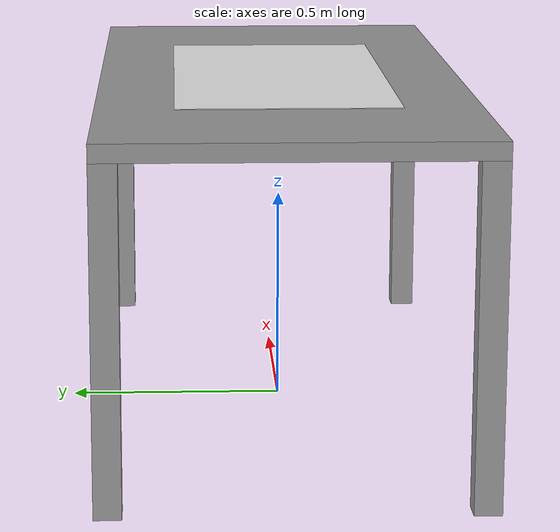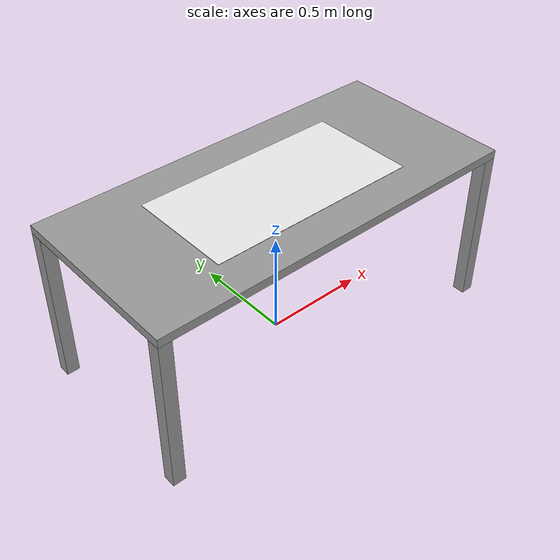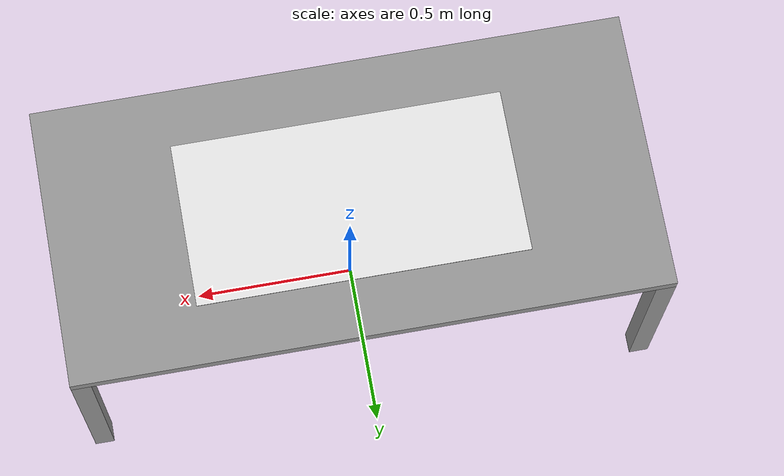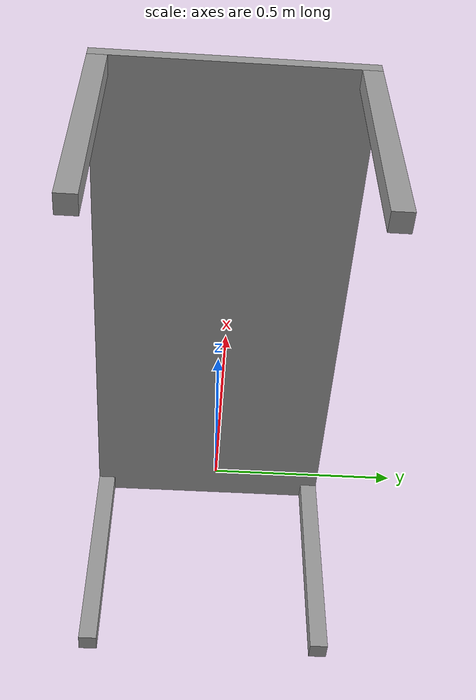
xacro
<?xml version="1.0"?>
<robot name="green_table" xmlns:xacro="http://www.ros.org/wiki/xacro">

  <!--
       The wooden lab/experiment tables in lab room F328
       are 180x85 cm2 and height 79cm,
       Leg diameter is set to 6cm.
  -->

  <xacro:property name="table_height" value="0.79" />
  <xacro:property name="table_width" value="1.80" />
  <xacro:property name="table_depth" value="0.85" />
  <xacro:property name="leg_radius" value="0.03" />
  <xacro:property name="table_x" value="0.0" />
  <xacro:property name="table_y" value="0.0" />
  <xacro:property name="table_z" value="0.0" />

  <xacro:property name="table_top_thickness" value="0.04"/>

  <link name="table_plate">
    <inertial>
      <mass value="8.0" />
      <origin xyz="0 0 ${table_height - table_top_thickness/2}" />
      <inertia ixx="1" ixy="0"  ixz="0" iyy="1" iyz="0" izz="1" />
    </inertial>
    <visual>
      <origin xyz="0 0 ${table_height - table_top_thickness/2}" />
      <geometry>
        <box size="${table_width} ${table_depth} ${table_top_thickness}" />
      </geometry>
      <material name="Grey" />
    </visual>
    <collision>
      <origin xyz="0 0 ${table_height - table_top_thickness/2}" />
      <geometry>
        <box size="${table_width} ${table_depth} ${table_top_thickness}" />
      </geometry>
    </collision>
  </link>
  <gazebo reference="table_plate">
    <material>handle/KotoWood</material>
    <mu1>50.0</mu1>
    <mu2>50.0</mu2>
    <kp>1000000.0</kp>
    <kd>1.0</kd>
    <selfCollide>false</selfCollide>
  </gazebo>

  <xacro:macro name="leg" params="name *origin">

    <link name="${name}">
      <inertial>
        <mass value="1.0" />
        <origin xyz="0 0 ${table_height/2 - table_top_thickness/2}" />
        <inertia ixx="0.1" ixy="0"  ixz="0" iyy="0.1" iyz="0" izz="0.01" />
      </inertial>
      <visual>
        <origin xyz="0 0 ${table_height/2 - table_top_thickness/2}" />
        <geometry>
          <box size="${2*leg_radius} ${2*leg_radius} ${table_height-table_top_thickness}" />
        </geometry>
        <material name="Grey" />
      </visual>
      <collision>
        <origin xyz="0 0 ${table_height/2-table_top_thickness/2}" />
        <geometry>
          <box size="${2*leg_radius} ${2*leg_radius} ${table_height-table_top_thickness}" />
        </geometry>
      </collision>
    </link>

    <gazebo reference="${name}">
      <material>handle/KotoWood</material>
      <mu1>1000.0</mu1>
      <mu2>1000.0</mu2>
      <kp>10000000.0</kp>
      <kd>1.0</kd>
      <selfCollide>false</selfCollide>
    </gazebo>

    <joint name="${name}_joint" type="fixed" >
      <parent link="table_plate" />
      <xacro:insert_block name="origin" />
      <child link="${name}" />
    </joint>

  </xacro:macro>

  <xacro:leg name="leg1">
    <origin xyz="${-0.5*table_width+leg_radius} ${-0.5*table_depth+leg_radius} 0" rpy="0 0 0" />
  </xacro:leg>

  <xacro:leg name="leg2">
    <origin xyz="${-0.5*table_width+leg_radius} ${+0.5*table_depth-leg_radius} 0" rpy="0 0 0" />
  </xacro:leg>

  <xacro:leg name="leg3">
    <origin xyz="${+0.5*table_width-leg_radius} ${-0.5*table_depth+leg_radius} 0" rpy="0 0 0" />
  </xacro:leg>

  <xacro:leg name="leg4">
    <origin xyz="${+0.5*table_width-leg_radius} ${+0.5*table_depth-leg_radius} 0" rpy="0 0 0" />
  </xacro:leg>

  <link name="styrofoam_plate">
    <inertial>
      <mass value="0.02" />
      <origin xyz="0 0 ${table_height - table_top_thickness/2}" />
      <inertia ixx="1" ixy="0"  ixz="0" iyy="1" iyz="0" izz="1" />
    </inertial>
    <visual>
      <origin xyz="0 0 ${table_height - table_top_thickness/2}" />
      <geometry>
        <box size="1.0 0.5 0.002" />
      </geometry>
      <material name="White" />
    </visual>
    <collision>
      <origin xyz="0 0 ${table_height - table_top_thickness/2}" />
      <geometry>
        <box size="1.0 0.5 0.002" />
      </geometry>
    </collision>
  </link>

  <gazebo reference="styrofoam_plate">
    <material>handle/DecimeterGrid</material>
    <mu1>50.0</mu1>
    <mu2>50.0</mu2>
    <kp>1000000.0</kp>
    <kd>1.0</kd>
    <selfCollide>false</selfCollide>
  </gazebo>

  <joint name="$styrofoam_fix" type="fixed" >
    <parent link="table_plate" />
    <child link="styrofoam_plate" />
    <origin xyz="0 0 ${table_top_thickness/2+0.001}" rpy="0 0 0" />
  </joint>

</robot>
